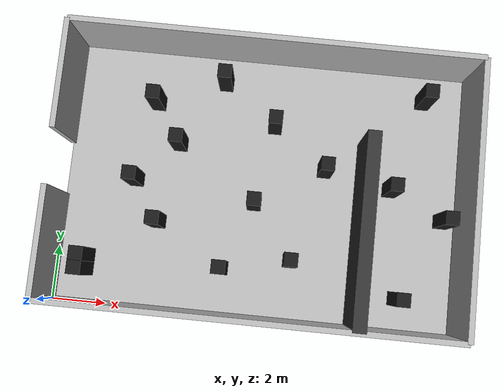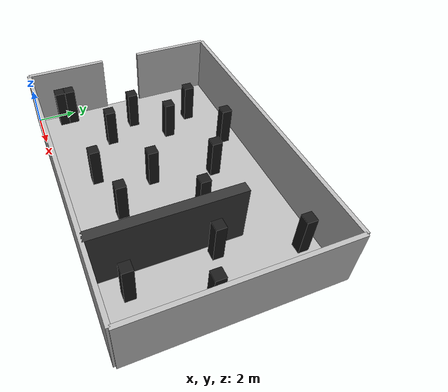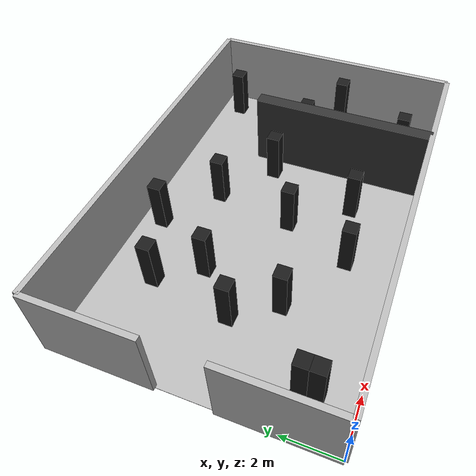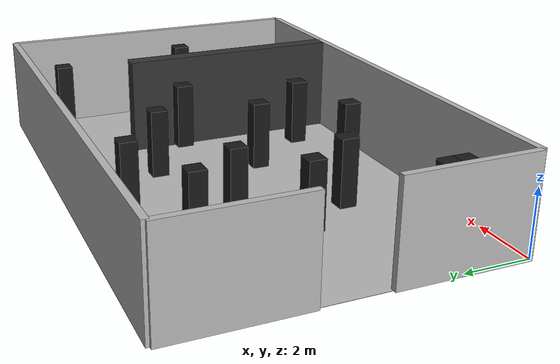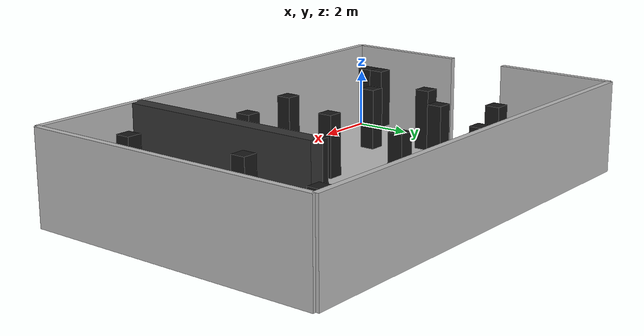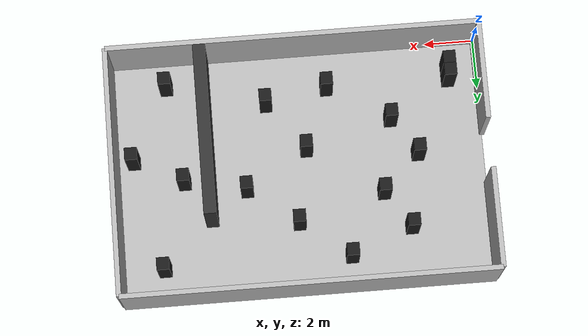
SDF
<?xml version="1.0" ?>
<sdf version="1.7">
  <world name="hybrid_forest_world">

    <include><uri>model://sun</uri></include>

    <model name="floor">
      <static>true</static>
      <link name="link">
        <pose>7.5 5 0 0 0 0</pose>
        <visual name="visual"><geometry><box><size>15 10 0.01</size></box></geometry></visual>
      </link>
    </model>

    <model name="north_wall">
      <static>true</static>
      <link name="link">
        <pose>7.5 10 1.5 0 0 0</pose>
        <collision name="collision"><geometry><box><size>15 0.2 3.0</size></box></geometry></collision>
        <visual name="visual"><geometry><box><size>15 0.2 3.0</size></box></geometry></visual>
      </link>
    </model>

    <model name="south_wall">
      <static>true</static>
      <link name="link">
        <pose>7.5 0 1.5 0 0 0</pose>
        <collision name="collision"><geometry><box><size>15 0.2 3.0</size></box></geometry></collision>
        <visual name="visual"><geometry><box><size>15 0.2 3.0</size></box></geometry></visual>
      </link>
    </model>

    <model name="east_wall">
      <static>true</static>
      <link name="link">
        <pose>15 5 1.5 0 0 0</pose>
        <collision name="collision"><geometry><box><size>0.2 10 3.0</size></box></geometry></collision>
        <visual name="visual"><geometry><box><size>0.2 10 3.0</size></box></geometry></visual>
      </link>
    </model>

    <model name="west_wall_south">
      <static>true</static>
      <link name="link">
        <pose>0 2 1.5 0 0 0</pose>
        <collision name="collision"><geometry><box><size>0.2 4 3.0</size></box></geometry></collision>
        <visual name="visual"><geometry><box><size>0.2 4 3.0</size></box></geometry></visual>
      </link>
    </model>

    <model name="west_wall_north">
      <static>true</static>
      <link name="link">
        <pose>0 8 1.5 0 0 0</pose>
        <collision name="collision"><geometry><box><size>0.2 4 3.0</size></box></geometry></collision>
        <visual name="visual"><geometry><box><size>0.2 4 3.0</size></box></geometry></visual>
      </link>
    </model>

    <model name="partial_central_wall">
      <static>true</static>
      <link name="link">
        <pose>11.25 3.5 1.5 0 0 0</pose>
        <collision name="collision">
          <geometry><box><size>0.5 7.0 3.0</size></box></geometry>
        </collision>
        <visual name="visual">
          <geometry><box><size>0.5 7.0 3.0</size></box></geometry>
          <material><ambient>0.2 0.2 0.2 1</ambient></material>
        </visual>
      </link>
    </model>

    <model name='forest_block_1'>
      <static>true</static>
      <link name='link'>
        <pose>1.25 1.75 1.5 0 0 0</pose> <collision name='collision'>
          <geometry><box><size>0.5 0.5 3.0</size></box></geometry>
        </collision>
        <visual name='visual'>
          <geometry><box><size>0.5 0.5 2.0</size></box></geometry>
          <material><ambient>0.1 0.1 0.1 1</ambient></material>
        </visual>
      </link>
    </model>

    <model name='forest_block_1'>
      <static>true</static>
      <link name='link'>
        <pose>1.25 1.25 1.5 0 0 0</pose> <collision name='collision'>
          <geometry><box><size>0.5 0.5 3.0</size></box></geometry>
        </collision>
        <visual name='visual'>
          <geometry><box><size>0.5 0.5 2.0</size></box></geometry>
          <material><ambient>0.1 0.1 0.1 1</ambient></material>
        </visual>
      </link>
    </model>

    <model name='forest_block_2'>
      <static>true</static>
      <link name='link'>
        <pose>2.75 4.75 1.5 0 0 0</pose> <collision name='collision'>
          <geometry><box><size>0.5 0.5 3.0</size></box></geometry>
        </collision>
        <visual name='visual'>
          <geometry><box><size>0.5 0.5 2.0</size></box></geometry>
          <material><ambient>0.1 0.1 0.1 1</ambient></material>
        </visual>
      </link>
    </model>

    <model name='forest_block_3'>
      <static>true</static>
      <link name='link'>
        <pose>3.25 7.75 1.5 0 0 0</pose> <collision name='collision'>
          <geometry><box><size>0.5 0.5 3.0</size></box></geometry>
        </collision>
        <visual name='visual'>
          <geometry><box><size>0.5 0.5 2.0</size></box></geometry>
          <material><ambient>0.1 0.1 0.1 1</ambient></material>
        </visual>
      </link>
    </model>

    <model name='forest_block_4'>
      <static>true</static>
      <link name='link'>
        <pose>4.25 6.25 1.5 0 0 0</pose> <collision name='collision'>
          <geometry><box><size>0.5 0.5 3.0</size></box></geometry>
        </collision>
        <visual name='visual'>
          <geometry><box><size>0.5 0.5 2.0</size></box></geometry>
          <material><ambient>0.1 0.1 0.1 1</ambient></material>
        </visual>
      </link>
    </model>

    <model name='forest_block_5'>
      <static>true</static>
      <link name='link'>
        <pose>3.75 3.25 1.5 0 0 0</pose> <collision name='collision'>
          <geometry><box><size>0.5 0.5 3.0</size></box></geometry>
        </collision>
        <visual name='visual'>
          <geometry><box><size>0.5 0.5 2.0</size></box></geometry>
          <material><ambient>0.1 0.1 0.1 1</ambient></material>
        </visual>
      </link>
    </model>

    <model name='forest_block_6'>
      <static>true</static>
      <link name='link'>
        <pose>5.75 8.75 1.5 0 0 0</pose> <collision name='collision'>
          <geometry><box><size>0.5 0.5 3.0</size></box></geometry>
        </collision>
        <visual name='visual'>
          <geometry><box><size>0.5 0.5 2.0</size></box></geometry>
          <material><ambient>0.1 0.1 0.1 1</ambient></material>
        </visual>
      </link>
    </model>

    <model name='forest_block_7'>
      <static>true</static>
      <link name='link'>
        <pose>6.25 1.75 1.5 0 0 0</pose> <collision name='collision'>
          <geometry><box><size>0.5 0.5 3.0</size></box></geometry>
        </collision>
        <visual name='visual'>
          <geometry><box><size>0.5 0.5 2.0</size></box></geometry>
          <material><ambient>0.1 0.1 0.1 1</ambient></material>
        </visual>
      </link>
    </model>

    <model name='forest_block_8'>
      <static>true</static>
      <link name='link'>
        <pose>7.75 7.25 1.5 0 0 0</pose> <collision name='collision'>
          <geometry><box><size>0.5 0.5 3.0</size></box></geometry>
        </collision>
        <visual name='visual'>
          <geometry><box><size>0.5 0.5 2.0</size></box></geometry>
          <material><ambient>0.1 0.1 0.1 1</ambient></material>
        </visual>
      </link>
    </model>

    <model name='forest_block_9'>
      <static>true</static>
      <link name='link'>
        <pose>7.25 4.25 1.5 0 0 0</pose> <collision name='collision'>
          <geometry><box><size>0.5 0.5 3.0</size></box></geometry>
        </collision>
        <visual name='visual'>
          <geometry><box><size>0.5 0.5 2.0</size></box></geometry>
          <material><ambient>0.1 0.1 0.1 1</ambient></material>
        </visual>
      </link>
    </model>

    <model name='forest_block_10'>
      <static>true</static>
      <link name='link'>
        <pose>8.75 2.25 1.5 0 0 0</pose> <collision name='collision'>
          <geometry><box><size>0.5 0.5 3.0</size></box></geometry>
        </collision>
        <visual name='visual'>
          <geometry><box><size>0.5 0.5 2.0</size></box></geometry>
          <material><ambient>0.1 0.1 0.1 1</ambient></material>
        </visual>
      </link>
    </model>

    <model name='forest_block_11'>
      <static>true</static>
      <link name='link'>
        <pose>9.75 5.75 1.5 0 0 0</pose> <collision name='collision'>
          <geometry><box><size>0.5 0.5 3.0</size></box></geometry>
        </collision>
        <visual name='visual'>
          <geometry><box><size>0.5 0.5 2.0</size></box></geometry>
          <material><ambient>0.1 0.1 0.1 1</ambient></material>
        </visual>
      </link>
    </model>

    <model name='forest_block_12'>
      <static>true</static>
      <link name='link'>
        <pose>12.25 5.25 1.5 0 0 0</pose> <collision name='collision'>
          <geometry><box><size>0.5 0.5 3.0</size></box></geometry>
        </collision>
        <visual name='visual'>
          <geometry><box><size>0.5 0.5 2.0</size></box></geometry>
          <material><ambient>0.1 0.1 0.1 1</ambient></material>
        </visual>
      </link>
    </model>

    <model name='forest_block_13'>
      <static>true</static>
      <link name='link'>
        <pose>12.75 1.25 1.5 0 0 0</pose> <collision name='collision'>
          <geometry><box><size>0.5 0.5 3.0</size></box></geometry>
        </collision>
        <visual name='visual'>
          <geometry><box><size>0.5 0.5 2.0</size></box></geometry>
          <material><ambient>0.1 0.1 0.1 1</ambient></material>
        </visual>
      </link>
    </model>

    <model name='forest_block_14'>
      <static>true</static>
      <link name='link'>
        <pose>13.25 8.75 1.5 0 0 0</pose> <collision name='collision'>
          <geometry><box><size>0.5 0.5 3.0</size></box></geometry>
        </collision>
        <visual name='visual'>
          <geometry><box><size>0.5 0.5 2.0</size></box></geometry>
          <material><ambient>0.1 0.1 0.1 1</ambient></material>
        </visual>
      </link>
    </model>

    <model name='forest_block_15'>
      <static>true</static>
      <link name='link'>
        <pose>14.25 4.25 1.5 0 0 0</pose> <collision name='collision'>
          <geometry><box><size>0.5 0.5 3.0</size></box></geometry>
        </collision>
        <visual name='visual'>
          <geometry><box><size>0.5 0.5 2.0</size></box></geometry>
          <material><ambient>0.1 0.1 0.1 1</ambient></material>
        </visual>
      </link>
    </model>

    </world>
</sdf>
